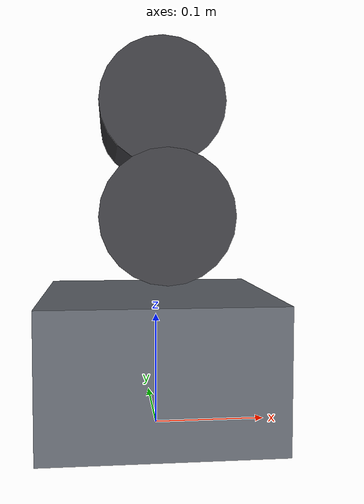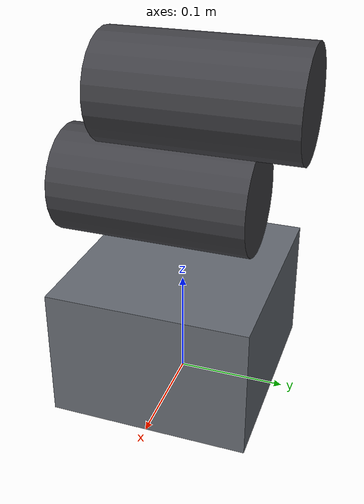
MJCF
<?xml version="1.0" encoding="utf-8"?>
<mujoco model="calendering_press">
  <compiler angle="radian" autolimits="true"/>
  <default>
    <default class="body"><geom contype="1" conaffinity="1"/></default>
  </default>
  <worldbody>
    <body name="base">
      <geom type="box" size="0.10 0.09 0.06" pos="0 0 0.06" rgba="0.4 0.42 0.45 1" class="body"/>
      <geom type="cylinder" size="0.05 0.09" pos="0 -0.02 0.19" rgba="0.25 0.25 0.27 1" class="body" quat="0.7071068 0.7071068 0 0"/>
      <body name="top_roller" pos="0 0.02 0.28">
        <joint name="top_roller_joint" type="slide" axis="0 0 1" range="-0.05 0" damping="1.0" frictionloss="0.5"/>
  <geom type="cylinder" size="0.05 0.09" pos="0 0 0" rgba="0.25 0.25 0.27 1" class="body" quat="0.7071068 0.7071068 0 0"/>
      </body>
    </body>
  </worldbody>
</mujoco>
